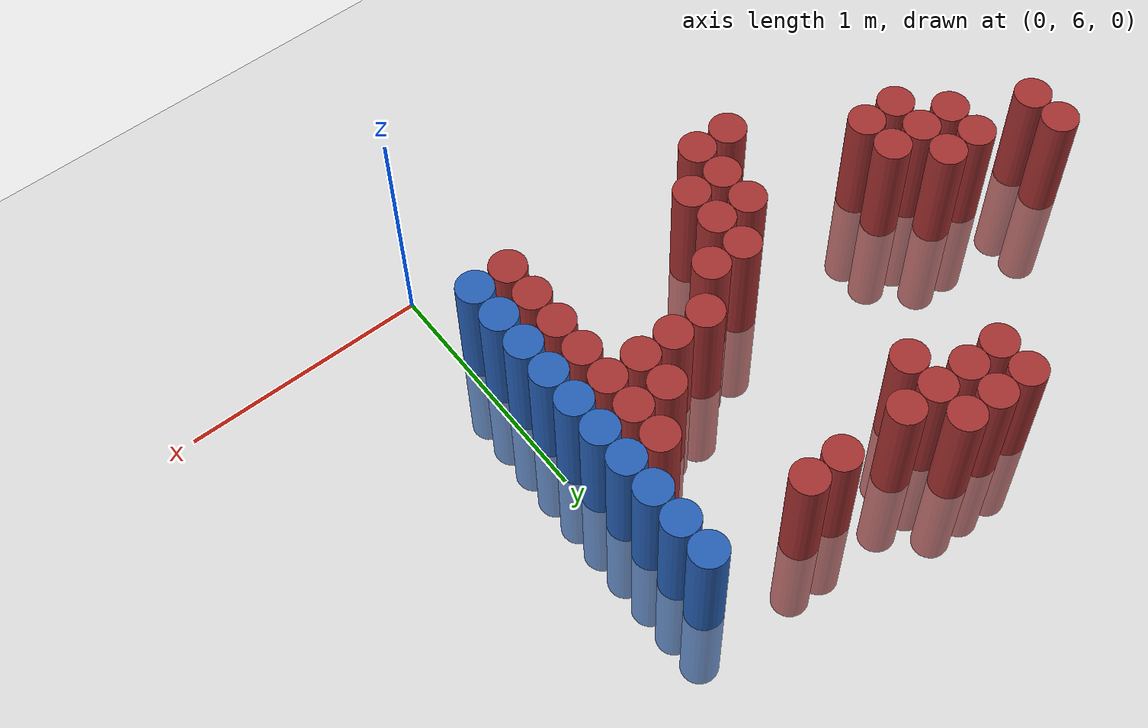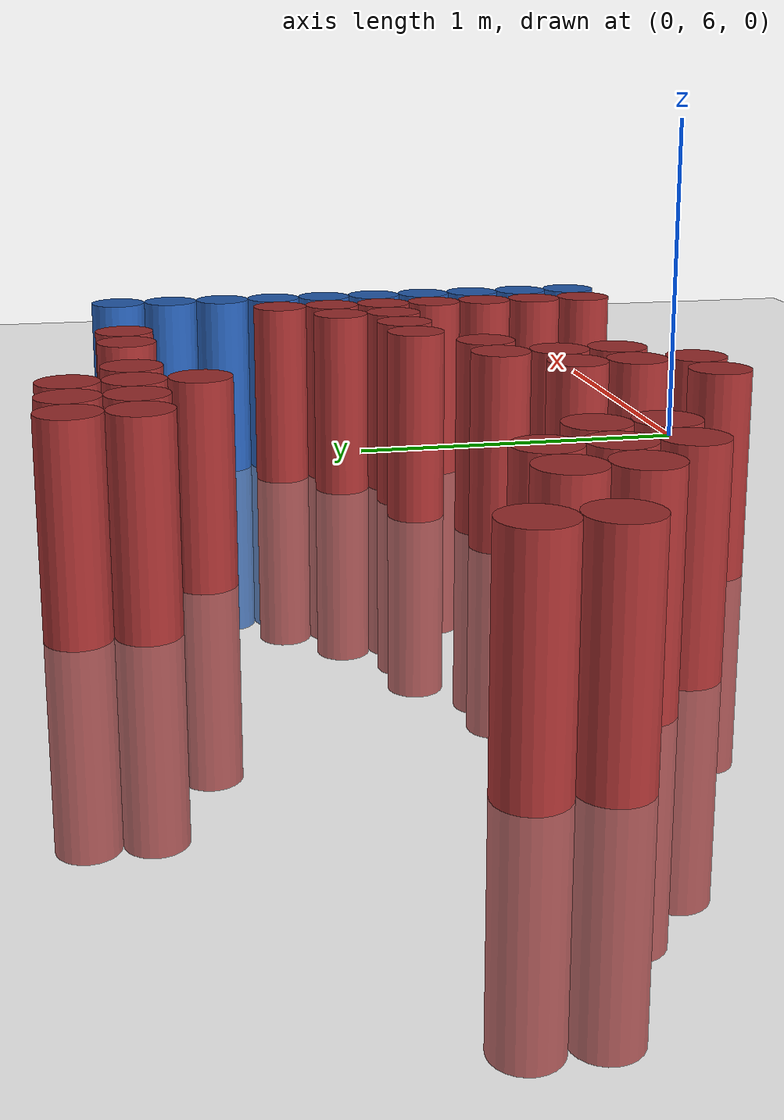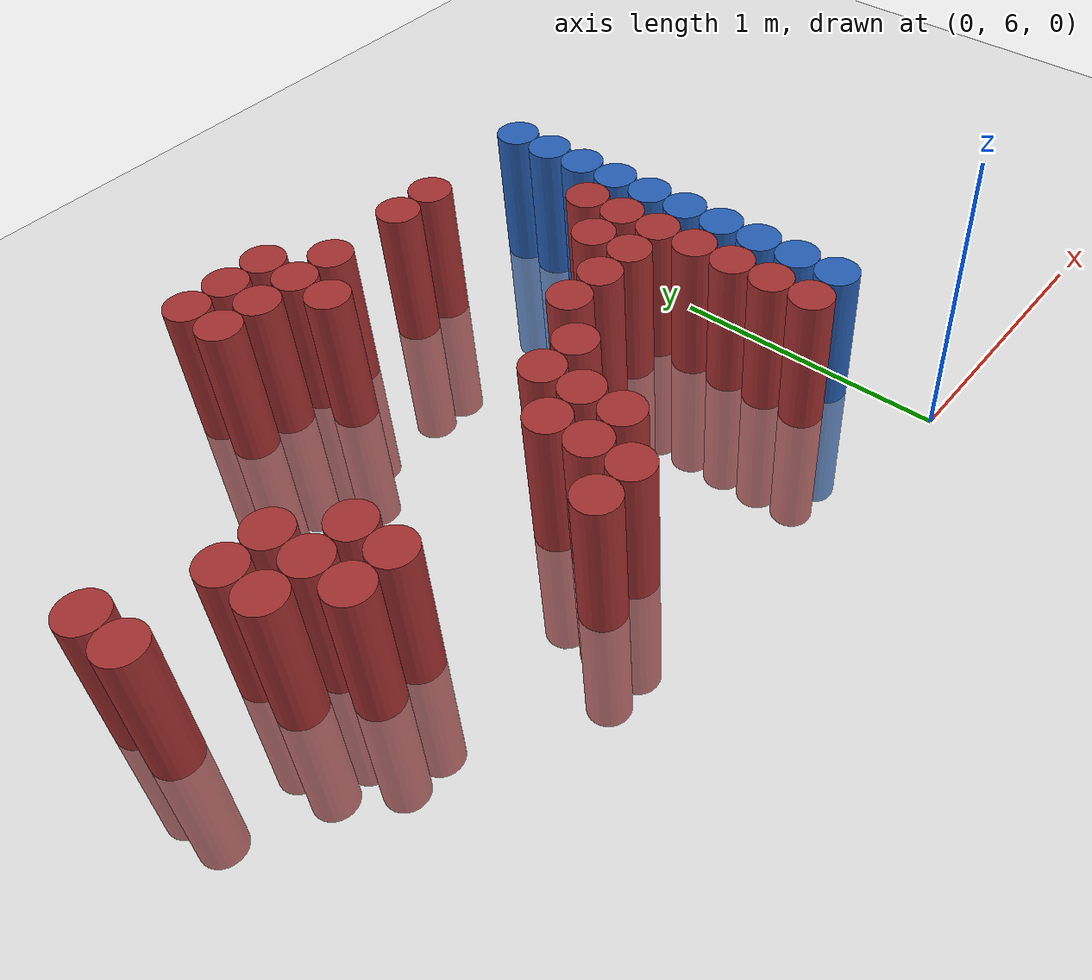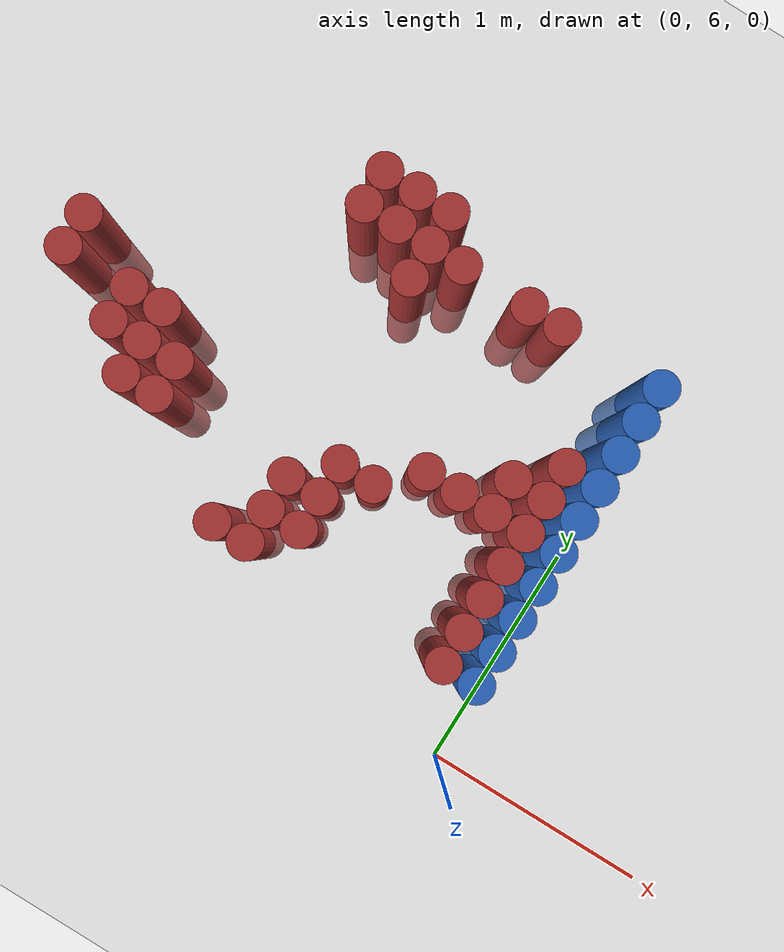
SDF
<sdf version="1.6">
 <world name="default">
  <model name="ground_plane">
   <static>1</static>
   <link name="link">
    <collision name="collision">
     <geometry><plane><normal>0 0 1</normal><size>100 100</size></plane></geometry>
     <surface><friction><ode><mu>100</mu><mu2>50</mu2></ode></friction></surface>
    </collision>
    <visual name="visual">
     <cast_shadows>0</cast_shadows>
     <geometry><plane><normal>0 0 1</normal><size>100 100</size></plane></geometry>
     <material>
      <script><uri>file://media/materials/scripts/gazebo.material</uri><name>Gazebo/Grey</name></script>
     </material>
    </visual>
   </link>
  </model>
  <model name="unit_cylinder_158">
   <static>1</static>
   <pose>-2.325000 6.975000 0.000000 0.000000 0.000000 0.000000</pose>
   <link name="link">
    <inertial>
     <mass>1</mass>
     <inertia><ixx>0.145833</ixx><ixy>0</ixy><ixz>0</ixz><iyy>0.145833</iyy><iyz>0</iyz><izz>0.125</izz></inertia>
    </inertial>
    <collision name="collision">
     <geometry><cylinder><radius>0.075000</radius><length>1</length></cylinder></geometry>
    </collision>
    <visual name="visual">
     <geometry><cylinder><radius>0.075000</radius><length>1</length></cylinder></geometry>
     <material>
      <ambient>0.648000 0.192000 0.192000 1</ambient>
      <diffuse>0.648000 0.192000 0.192000 1</diffuse>
     </material>
     <material>
      <script><name>Gazebo/Grey</name><uri>file://media/materials/scripts/gazebo.material</uri></script>
     </material>
    </visual>
   </link>
  </model>
  <model name="unit_cylinder_159">
   <static>1</static>
   <pose>-2.325000 7.125000 0.000000 0.000000 0.000000 0.000000</pose>
   <link name="link">
    <inertial>
     <mass>1</mass>
     <inertia><ixx>0.145833</ixx><ixy>0</ixy><ixz>0</ixz><iyy>0.145833</iyy><iyz>0</iyz><izz>0.125</izz></inertia>
    </inertial>
    <collision name="collision">
     <geometry><cylinder><radius>0.075000</radius><length>1</length></cylinder></geometry>
    </collision>
    <visual name="visual">
     <geometry><cylinder><radius>0.075000</radius><length>1</length></cylinder></geometry>
     <material>
      <ambient>0.648000 0.192000 0.192000 1</ambient>
      <diffuse>0.648000 0.192000 0.192000 1</diffuse>
     </material>
     <material>
      <script><name>Gazebo/Grey</name><uri>file://media/materials/scripts/gazebo.material</uri></script>
     </material>
    </visual>
   </link>
  </model>
  <model name="unit_cylinder_176">
   <static>1</static>
   <pose>-2.025000 6.825000 0.000000 0.000000 0.000000 0.000000</pose>
   <link name="link">
    <inertial>
     <mass>1</mass>
     <inertia><ixx>0.145833</ixx><ixy>0</ixy><ixz>0</ixz><iyy>0.145833</iyy><iyz>0</iyz><izz>0.125</izz></inertia>
    </inertial>
    <collision name="collision">
     <geometry><cylinder><radius>0.075000</radius><length>1</length></cylinder></geometry>
    </collision>
    <visual name="visual">
     <geometry><cylinder><radius>0.075000</radius><length>1</length></cylinder></geometry>
     <material>
      <ambient>0.648000 0.192000 0.192000 1</ambient>
      <diffuse>0.648000 0.192000 0.192000 1</diffuse>
     </material>
     <material>
      <script><name>Gazebo/Grey</name><uri>file://media/materials/scripts/gazebo.material</uri></script>
     </material>
    </visual>
   </link>
  </model>
  <model name="unit_cylinder_177">
   <static>1</static>
   <pose>-2.025000 6.975000 0.000000 0.000000 0.000000 0.000000</pose>
   <link name="link">
    <inertial>
     <mass>1</mass>
     <inertia><ixx>0.145833</ixx><ixy>0</ixy><ixz>0</ixz><iyy>0.145833</iyy><iyz>0</iyz><izz>0.125</izz></inertia>
    </inertial>
    <collision name="collision">
     <geometry><cylinder><radius>0.075000</radius><length>1</length></cylinder></geometry>
    </collision>
    <visual name="visual">
     <geometry><cylinder><radius>0.075000</radius><length>1</length></cylinder></geometry>
     <material>
      <ambient>0.648000 0.192000 0.192000 1</ambient>
      <diffuse>0.648000 0.192000 0.192000 1</diffuse>
     </material>
     <material>
      <script><name>Gazebo/Grey</name><uri>file://media/materials/scripts/gazebo.material</uri></script>
     </material>
    </visual>
   </link>
  </model>
  <model name="unit_cylinder_181">
   <static>1</static>
   <pose>-1.875000 6.675000 0.000000 0.000000 0.000000 0.000000</pose>
   <link name="link">
    <inertial>
     <mass>1</mass>
     <inertia><ixx>0.145833</ixx><ixy>0</ixy><ixz>0</ixz><iyy>0.145833</iyy><iyz>0</iyz><izz>0.125</izz></inertia>
    </inertial>
    <collision name="collision">
     <geometry><cylinder><radius>0.075000</radius><length>1</length></cylinder></geometry>
    </collision>
    <visual name="visual">
     <geometry><cylinder><radius>0.075000</radius><length>1</length></cylinder></geometry>
     <material>
      <ambient>0.648000 0.192000 0.192000 1</ambient>
      <diffuse>0.648000 0.192000 0.192000 1</diffuse>
     </material>
     <material>
      <script><name>Gazebo/Grey</name><uri>file://media/materials/scripts/gazebo.material</uri></script>
     </material>
    </visual>
   </link>
  </model>
  <model name="unit_cylinder_182">
   <static>1</static>
   <pose>-1.875000 6.825000 0.000000 0.000000 0.000000 0.000000</pose>
   <link name="link">
    <inertial>
     <mass>1</mass>
     <inertia><ixx>0.145833</ixx><ixy>0</ixy><ixz>0</ixz><iyy>0.145833</iyy><iyz>0</iyz><izz>0.125</izz></inertia>
    </inertial>
    <collision name="collision">
     <geometry><cylinder><radius>0.075000</radius><length>1</length></cylinder></geometry>
    </collision>
    <visual name="visual">
     <geometry><cylinder><radius>0.075000</radius><length>1</length></cylinder></geometry>
     <material>
      <ambient>0.648000 0.192000 0.192000 1</ambient>
      <diffuse>0.648000 0.192000 0.192000 1</diffuse>
     </material>
     <material>
      <script><name>Gazebo/Grey</name><uri>file://media/materials/scripts/gazebo.material</uri></script>
     </material>
    </visual>
   </link>
  </model>
  <model name="unit_cylinder_183">
   <static>1</static>
   <pose>-1.875000 6.975000 0.000000 0.000000 0.000000 0.000000</pose>
   <link name="link">
    <inertial>
     <mass>1</mass>
     <inertia><ixx>0.145833</ixx><ixy>0</ixy><ixz>0</ixz><iyy>0.145833</iyy><iyz>0</iyz><izz>0.125</izz></inertia>
    </inertial>
    <collision name="collision">
     <geometry><cylinder><radius>0.075000</radius><length>1</length></cylinder></geometry>
    </collision>
    <visual name="visual">
     <geometry><cylinder><radius>0.075000</radius><length>1</length></cylinder></geometry>
     <material>
      <ambient>0.648000 0.192000 0.192000 1</ambient>
      <diffuse>0.648000 0.192000 0.192000 1</diffuse>
     </material>
     <material>
      <script><name>Gazebo/Grey</name><uri>file://media/materials/scripts/gazebo.material</uri></script>
     </material>
    </visual>
   </link>
  </model>
  <model name="unit_cylinder_189">
   <static>1</static>
   <pose>-1.725000 6.675000 0.000000 0.000000 0.000000 0.000000</pose>
   <link name="link">
    <inertial>
     <mass>1</mass>
     <inertia><ixx>0.145833</ixx><ixy>0</ixy><ixz>0</ixz><iyy>0.145833</iyy><iyz>0</iyz><izz>0.125</izz></inertia>
    </inertial>
    <collision name="collision">
     <geometry><cylinder><radius>0.075000</radius><length>1</length></cylinder></geometry>
    </collision>
    <visual name="visual">
     <geometry><cylinder><radius>0.075000</radius><length>1</length></cylinder></geometry>
     <material>
      <ambient>0.648000 0.192000 0.192000 1</ambient>
      <diffuse>0.648000 0.192000 0.192000 1</diffuse>
     </material>
     <material>
      <script><name>Gazebo/Grey</name><uri>file://media/materials/scripts/gazebo.material</uri></script>
     </material>
    </visual>
   </link>
  </model>
  <model name="unit_cylinder_190">
   <static>1</static>
   <pose>-1.725000 6.825000 0.000000 0.000000 0.000000 0.000000</pose>
   <link name="link">
    <inertial>
     <mass>1</mass>
     <inertia><ixx>0.145833</ixx><ixy>0</ixy><ixz>0</ixz><iyy>0.145833</iyy><iyz>0</iyz><izz>0.125</izz></inertia>
    </inertial>
    <collision name="collision">
     <geometry><cylinder><radius>0.075000</radius><length>1</length></cylinder></geometry>
    </collision>
    <visual name="visual">
     <geometry><cylinder><radius>0.075000</radius><length>1</length></cylinder></geometry>
     <material>
      <ambient>0.648000 0.192000 0.192000 1</ambient>
      <diffuse>0.648000 0.192000 0.192000 1</diffuse>
     </material>
     <material>
      <script><name>Gazebo/Grey</name><uri>file://media/materials/scripts/gazebo.material</uri></script>
     </material>
    </visual>
   </link>
  </model>
  <model name="unit_cylinder_193">
   <static>1</static>
   <pose>-1.425000 7.725000 0.000000 0.000000 0.000000 0.000000</pose>
   <link name="link">
    <inertial>
     <mass>1</mass>
     <inertia><ixx>0.145833</ixx><ixy>0</ixy><ixz>0</ixz><iyy>0.145833</iyy><iyz>0</iyz><izz>0.125</izz></inertia>
    </inertial>
    <collision name="collision">
     <geometry><cylinder><radius>0.075000</radius><length>1</length></cylinder></geometry>
    </collision>
    <visual name="visual">
     <geometry><cylinder><radius>0.075000</radius><length>1</length></cylinder></geometry>
     <material>
      <ambient>0.648000 0.192000 0.192000 1</ambient>
      <diffuse>0.648000 0.192000 0.192000 1</diffuse>
     </material>
     <material>
      <script><name>Gazebo/Grey</name><uri>file://media/materials/scripts/gazebo.material</uri></script>
     </material>
    </visual>
   </link>
  </model>
  <model name="unit_cylinder_194">
   <static>1</static>
   <pose>-1.425000 7.875000 0.000000 0.000000 0.000000 0.000000</pose>
   <link name="link">
    <inertial>
     <mass>1</mass>
     <inertia><ixx>0.145833</ixx><ixy>0</ixy><ixz>0</ixz><iyy>0.145833</iyy><iyz>0</iyz><izz>0.125</izz></inertia>
    </inertial>
    <collision name="collision">
     <geometry><cylinder><radius>0.075000</radius><length>1</length></cylinder></geometry>
    </collision>
    <visual name="visual">
     <geometry><cylinder><radius>0.075000</radius><length>1</length></cylinder></geometry>
     <material>
      <ambient>0.648000 0.192000 0.192000 1</ambient>
      <diffuse>0.648000 0.192000 0.192000 1</diffuse>
     </material>
     <material>
      <script><name>Gazebo/Grey</name><uri>file://media/materials/scripts/gazebo.material</uri></script>
     </material>
    </visual>
   </link>
  </model>
  <model name="unit_cylinder_197">
   <static>1</static>
   <pose>-1.275000 6.375000 0.000000 0.000000 0.000000 0.000000</pose>
   <link name="link">
    <inertial>
     <mass>1</mass>
     <inertia><ixx>0.145833</ixx><ixy>0</ixy><ixz>0</ixz><iyy>0.145833</iyy><iyz>0</iyz><izz>0.125</izz></inertia>
    </inertial>
    <collision name="collision">
     <geometry><cylinder><radius>0.075000</radius><length>1</length></cylinder></geometry>
    </collision>
    <visual name="visual">
     <geometry><cylinder><radius>0.075000</radius><length>1</length></cylinder></geometry>
     <material>
      <ambient>0.648000 0.192000 0.192000 1</ambient>
      <diffuse>0.648000 0.192000 0.192000 1</diffuse>
     </material>
     <material>
      <script><name>Gazebo/Grey</name><uri>file://media/materials/scripts/gazebo.material</uri></script>
     </material>
    </visual>
   </link>
  </model>
  <model name="unit_cylinder_198">
   <static>1</static>
   <pose>-1.275000 7.725000 0.000000 0.000000 0.000000 0.000000</pose>
   <link name="link">
    <inertial>
     <mass>1</mass>
     <inertia><ixx>0.145833</ixx><ixy>0</ixy><ixz>0</ixz><iyy>0.145833</iyy><iyz>0</iyz><izz>0.125</izz></inertia>
    </inertial>
    <collision name="collision">
     <geometry><cylinder><radius>0.075000</radius><length>1</length></cylinder></geometry>
    </collision>
    <visual name="visual">
     <geometry><cylinder><radius>0.075000</radius><length>1</length></cylinder></geometry>
     <material>
      <ambient>0.648000 0.192000 0.192000 1</ambient>
      <diffuse>0.648000 0.192000 0.192000 1</diffuse>
     </material>
     <material>
      <script><name>Gazebo/Grey</name><uri>file://media/materials/scripts/gazebo.material</uri></script>
     </material>
    </visual>
   </link>
  </model>
  <model name="unit_cylinder_199">
   <static>1</static>
   <pose>-1.275000 7.875000 0.000000 0.000000 0.000000 0.000000</pose>
   <link name="link">
    <inertial>
     <mass>1</mass>
     <inertia><ixx>0.145833</ixx><ixy>0</ixy><ixz>0</ixz><iyy>0.145833</iyy><iyz>0</iyz><izz>0.125</izz></inertia>
    </inertial>
    <collision name="collision">
     <geometry><cylinder><radius>0.075000</radius><length>1</length></cylinder></geometry>
    </collision>
    <visual name="visual">
     <geometry><cylinder><radius>0.075000</radius><length>1</length></cylinder></geometry>
     <material>
      <ambient>0.648000 0.192000 0.192000 1</ambient>
      <diffuse>0.648000 0.192000 0.192000 1</diffuse>
     </material>
     <material>
      <script><name>Gazebo/Grey</name><uri>file://media/materials/scripts/gazebo.material</uri></script>
     </material>
    </visual>
   </link>
  </model>
  <model name="unit_cylinder_203">
   <static>1</static>
   <pose>-1.125000 6.375000 0.000000 0.000000 0.000000 0.000000</pose>
   <link name="link">
    <inertial>
     <mass>1</mass>
     <inertia><ixx>0.145833</ixx><ixy>0</ixy><ixz>0</ixz><iyy>0.145833</iyy><iyz>0</iyz><izz>0.125</izz></inertia>
    </inertial>
    <collision name="collision">
     <geometry><cylinder><radius>0.075000</radius><length>1</length></cylinder></geometry>
    </collision>
    <visual name="visual">
     <geometry><cylinder><radius>0.075000</radius><length>1</length></cylinder></geometry>
     <material>
      <ambient>0.648000 0.192000 0.192000 1</ambient>
      <diffuse>0.648000 0.192000 0.192000 1</diffuse>
     </material>
     <material>
      <script><name>Gazebo/Grey</name><uri>file://media/materials/scripts/gazebo.material</uri></script>
     </material>
    </visual>
   </link>
  </model>
  <model name="unit_cylinder_204">
   <static>1</static>
   <pose>-1.125000 6.525000 0.000000 0.000000 0.000000 0.000000</pose>
   <link name="link">
    <inertial>
     <mass>1</mass>
     <inertia><ixx>0.145833</ixx><ixy>0</ixy><ixz>0</ixz><iyy>0.145833</iyy><iyz>0</iyz><izz>0.125</izz></inertia>
    </inertial>
    <collision name="collision">
     <geometry><cylinder><radius>0.075000</radius><length>1</length></cylinder></geometry>
    </collision>
    <visual name="visual">
     <geometry><cylinder><radius>0.075000</radius><length>1</length></cylinder></geometry>
     <material>
      <ambient>0.648000 0.192000 0.192000 1</ambient>
      <diffuse>0.648000 0.192000 0.192000 1</diffuse>
     </material>
     <material>
      <script><name>Gazebo/Grey</name><uri>file://media/materials/scripts/gazebo.material</uri></script>
     </material>
    </visual>
   </link>
  </model>
  <model name="unit_cylinder_205">
   <static>1</static>
   <pose>-1.125000 6.675000 0.000000 0.000000 0.000000 0.000000</pose>
   <link name="link">
    <inertial>
     <mass>1</mass>
     <inertia><ixx>0.145833</ixx><ixy>0</ixy><ixz>0</ixz><iyy>0.145833</iyy><iyz>0</iyz><izz>0.125</izz></inertia>
    </inertial>
    <collision name="collision">
     <geometry><cylinder><radius>0.075000</radius><length>1</length></cylinder></geometry>
    </collision>
    <visual name="visual">
     <geometry><cylinder><radius>0.075000</radius><length>1</length></cylinder></geometry>
     <material>
      <ambient>0.648000 0.192000 0.192000 1</ambient>
      <diffuse>0.648000 0.192000 0.192000 1</diffuse>
     </material>
     <material>
      <script><name>Gazebo/Grey</name><uri>file://media/materials/scripts/gazebo.material</uri></script>
     </material>
    </visual>
   </link>
  </model>
  <model name="unit_cylinder_206">
   <static>1</static>
   <pose>-1.125000 7.575000 0.000000 0.000000 0.000000 0.000000</pose>
   <link name="link">
    <inertial>
     <mass>1</mass>
     <inertia><ixx>0.145833</ixx><ixy>0</ixy><ixz>0</ixz><iyy>0.145833</iyy><iyz>0</iyz><izz>0.125</izz></inertia>
    </inertial>
    <collision name="collision">
     <geometry><cylinder><radius>0.075000</radius><length>1</length></cylinder></geometry>
    </collision>
    <visual name="visual">
     <geometry><cylinder><radius>0.075000</radius><length>1</length></cylinder></geometry>
     <material>
      <ambient>0.648000 0.192000 0.192000 1</ambient>
      <diffuse>0.648000 0.192000 0.192000 1</diffuse>
     </material>
     <material>
      <script><name>Gazebo/Grey</name><uri>file://media/materials/scripts/gazebo.material</uri></script>
     </material>
    </visual>
   </link>
  </model>
  <model name="unit_cylinder_207">
   <static>1</static>
   <pose>-1.125000 7.725000 0.000000 0.000000 0.000000 0.000000</pose>
   <link name="link">
    <inertial>
     <mass>1</mass>
     <inertia><ixx>0.145833</ixx><ixy>0</ixy><ixz>0</ixz><iyy>0.145833</iyy><iyz>0</iyz><izz>0.125</izz></inertia>
    </inertial>
    <collision name="collision">
     <geometry><cylinder><radius>0.075000</radius><length>1</length></cylinder></geometry>
    </collision>
    <visual name="visual">
     <geometry><cylinder><radius>0.075000</radius><length>1</length></cylinder></geometry>
     <material>
      <ambient>0.648000 0.192000 0.192000 1</ambient>
      <diffuse>0.648000 0.192000 0.192000 1</diffuse>
     </material>
     <material>
      <script><name>Gazebo/Grey</name><uri>file://media/materials/scripts/gazebo.material</uri></script>
     </material>
    </visual>
   </link>
  </model>
  <model name="unit_cylinder_208">
   <static>1</static>
   <pose>-1.125000 7.875000 0.000000 0.000000 0.000000 0.000000</pose>
   <link name="link">
    <inertial>
     <mass>1</mass>
     <inertia><ixx>0.145833</ixx><ixy>0</ixy><ixz>0</ixz><iyy>0.145833</iyy><iyz>0</iyz><izz>0.125</izz></inertia>
    </inertial>
    <collision name="collision">
     <geometry><cylinder><radius>0.075000</radius><length>1</length></cylinder></geometry>
    </collision>
    <visual name="visual">
     <geometry><cylinder><radius>0.075000</radius><length>1</length></cylinder></geometry>
     <material>
      <ambient>0.648000 0.192000 0.192000 1</ambient>
      <diffuse>0.648000 0.192000 0.192000 1</diffuse>
     </material>
     <material>
      <script><name>Gazebo/Grey</name><uri>file://media/materials/scripts/gazebo.material</uri></script>
     </material>
    </visual>
   </link>
  </model>
  <model name="unit_cylinder_211">
   <static>1</static>
   <pose>-0.975000 6.525000 0.000000 0.000000 0.000000 0.000000</pose>
   <link name="link">
    <inertial>
     <mass>1</mass>
     <inertia><ixx>0.145833</ixx><ixy>0</ixy><ixz>0</ixz><iyy>0.145833</iyy><iyz>0</iyz><izz>0.125</izz></inertia>
    </inertial>
    <collision name="collision">
     <geometry><cylinder><radius>0.075000</radius><length>1</length></cylinder></geometry>
    </collision>
    <visual name="visual">
     <geometry><cylinder><radius>0.075000</radius><length>1</length></cylinder></geometry>
     <material>
      <ambient>0.648000 0.192000 0.192000 1</ambient>
      <diffuse>0.648000 0.192000 0.192000 1</diffuse>
     </material>
     <material>
      <script><name>Gazebo/Grey</name><uri>file://media/materials/scripts/gazebo.material</uri></script>
     </material>
    </visual>
   </link>
  </model>
  <model name="unit_cylinder_212">
   <static>1</static>
   <pose>-0.975000 6.675000 0.000000 0.000000 0.000000 0.000000</pose>
   <link name="link">
    <inertial>
     <mass>1</mass>
     <inertia><ixx>0.145833</ixx><ixy>0</ixy><ixz>0</ixz><iyy>0.145833</iyy><iyz>0</iyz><izz>0.125</izz></inertia>
    </inertial>
    <collision name="collision">
     <geometry><cylinder><radius>0.075000</radius><length>1</length></cylinder></geometry>
    </collision>
    <visual name="visual">
     <geometry><cylinder><radius>0.075000</radius><length>1</length></cylinder></geometry>
     <material>
      <ambient>0.648000 0.192000 0.192000 1</ambient>
      <diffuse>0.648000 0.192000 0.192000 1</diffuse>
     </material>
     <material>
      <script><name>Gazebo/Grey</name><uri>file://media/materials/scripts/gazebo.material</uri></script>
     </material>
    </visual>
   </link>
  </model>
  <model name="unit_cylinder_213">
   <static>1</static>
   <pose>-0.975000 6.825000 0.000000 0.000000 0.000000 0.000000</pose>
   <link name="link">
    <inertial>
     <mass>1</mass>
     <inertia><ixx>0.145833</ixx><ixy>0</ixy><ixz>0</ixz><iyy>0.145833</iyy><iyz>0</iyz><izz>0.125</izz></inertia>
    </inertial>
    <collision name="collision">
     <geometry><cylinder><radius>0.075000</radius><length>1</length></cylinder></geometry>
    </collision>
    <visual name="visual">
     <geometry><cylinder><radius>0.075000</radius><length>1</length></cylinder></geometry>
     <material>
      <ambient>0.648000 0.192000 0.192000 1</ambient>
      <diffuse>0.648000 0.192000 0.192000 1</diffuse>
     </material>
     <material>
      <script><name>Gazebo/Grey</name><uri>file://media/materials/scripts/gazebo.material</uri></script>
     </material>
    </visual>
   </link>
  </model>
  <model name="unit_cylinder_214">
   <static>1</static>
   <pose>-0.975000 7.725000 0.000000 0.000000 0.000000 0.000000</pose>
   <link name="link">
    <inertial>
     <mass>1</mass>
     <inertia><ixx>0.145833</ixx><ixy>0</ixy><ixz>0</ixz><iyy>0.145833</iyy><iyz>0</iyz><izz>0.125</izz></inertia>
    </inertial>
    <collision name="collision">
     <geometry><cylinder><radius>0.075000</radius><length>1</length></cylinder></geometry>
    </collision>
    <visual name="visual">
     <geometry><cylinder><radius>0.075000</radius><length>1</length></cylinder></geometry>
     <material>
      <ambient>0.648000 0.192000 0.192000 1</ambient>
      <diffuse>0.648000 0.192000 0.192000 1</diffuse>
     </material>
     <material>
      <script><name>Gazebo/Grey</name><uri>file://media/materials/scripts/gazebo.material</uri></script>
     </material>
    </visual>
   </link>
  </model>
  <model name="unit_cylinder_217">
   <static>1</static>
   <pose>-0.825000 6.825000 0.000000 0.000000 0.000000 0.000000</pose>
   <link name="link">
    <inertial>
     <mass>1</mass>
     <inertia><ixx>0.145833</ixx><ixy>0</ixy><ixz>0</ixz><iyy>0.145833</iyy><iyz>0</iyz><izz>0.125</izz></inertia>
    </inertial>
    <collision name="collision">
     <geometry><cylinder><radius>0.075000</radius><length>1</length></cylinder></geometry>
    </collision>
    <visual name="visual">
     <geometry><cylinder><radius>0.075000</radius><length>1</length></cylinder></geometry>
     <material>
      <ambient>0.648000 0.192000 0.192000 1</ambient>
      <diffuse>0.648000 0.192000 0.192000 1</diffuse>
     </material>
     <material>
      <script><name>Gazebo/Grey</name><uri>file://media/materials/scripts/gazebo.material</uri></script>
     </material>
    </visual>
   </link>
  </model>
  <model name="unit_cylinder_224">
   <static>1</static>
   <pose>-0.675000 6.975000 0.000000 0.000000 0.000000 0.000000</pose>
   <link name="link">
    <inertial>
     <mass>1</mass>
     <inertia><ixx>0.145833</ixx><ixy>0</ixy><ixz>0</ixz><iyy>0.145833</iyy><iyz>0</iyz><izz>0.125</izz></inertia>
    </inertial>
    <collision name="collision">
     <geometry><cylinder><radius>0.075000</radius><length>1</length></cylinder></geometry>
    </collision>
    <visual name="visual">
     <geometry><cylinder><radius>0.075000</radius><length>1</length></cylinder></geometry>
     <material>
      <ambient>0.648000 0.192000 0.192000 1</ambient>
      <diffuse>0.648000 0.192000 0.192000 1</diffuse>
     </material>
     <material>
      <script><name>Gazebo/Grey</name><uri>file://media/materials/scripts/gazebo.material</uri></script>
     </material>
    </visual>
   </link>
  </model>
  <model name="unit_cylinder_225">
   <static>1</static>
   <pose>-0.675000 7.725000 0.000000 0.000000 0.000000 0.000000</pose>
   <link name="link">
    <inertial>
     <mass>1</mass>
     <inertia><ixx>0.145833</ixx><ixy>0</ixy><ixz>0</ixz><iyy>0.145833</iyy><iyz>0</iyz><izz>0.125</izz></inertia>
    </inertial>
    <collision name="collision">
     <geometry><cylinder><radius>0.075000</radius><length>1</length></cylinder></geometry>
    </collision>
    <visual name="visual">
     <geometry><cylinder><radius>0.075000</radius><length>1</length></cylinder></geometry>
     <material>
      <ambient>0.648000 0.192000 0.192000 1</ambient>
      <diffuse>0.648000 0.192000 0.192000 1</diffuse>
     </material>
     <material>
      <script><name>Gazebo/Grey</name><uri>file://media/materials/scripts/gazebo.material</uri></script>
     </material>
    </visual>
   </link>
  </model>
  <model name="unit_cylinder_233">
   <static>1</static>
   <pose>-0.525000 6.975000 0.000000 0.000000 0.000000 0.000000</pose>
   <link name="link">
    <inertial>
     <mass>1</mass>
     <inertia><ixx>0.145833</ixx><ixy>0</ixy><ixz>0</ixz><iyy>0.145833</iyy><iyz>0</iyz><izz>0.125</izz></inertia>
    </inertial>
    <collision name="collision">
     <geometry><cylinder><radius>0.075000</radius><length>1</length></cylinder></geometry>
    </collision>
    <visual name="visual">
     <geometry><cylinder><radius>0.075000</radius><length>1</length></cylinder></geometry>
     <material>
      <ambient>0.648000 0.192000 0.192000 1</ambient>
      <diffuse>0.648000 0.192000 0.192000 1</diffuse>
     </material>
     <material>
      <script><name>Gazebo/Grey</name><uri>file://media/materials/scripts/gazebo.material</uri></script>
     </material>
    </visual>
   </link>
  </model>
  <model name="unit_cylinder_234">
   <static>1</static>
   <pose>-0.525000 7.725000 0.000000 0.000000 0.000000 0.000000</pose>
   <link name="link">
    <inertial>
     <mass>1</mass>
     <inertia><ixx>0.145833</ixx><ixy>0</ixy><ixz>0</ixz><iyy>0.145833</iyy><iyz>0</iyz><izz>0.125</izz></inertia>
    </inertial>
    <collision name="collision">
     <geometry><cylinder><radius>0.075000</radius><length>1</length></cylinder></geometry>
    </collision>
    <visual name="visual">
     <geometry><cylinder><radius>0.075000</radius><length>1</length></cylinder></geometry>
     <material>
      <ambient>0.648000 0.192000 0.192000 1</ambient>
      <diffuse>0.648000 0.192000 0.192000 1</diffuse>
     </material>
     <material>
      <script><name>Gazebo/Grey</name><uri>file://media/materials/scripts/gazebo.material</uri></script>
     </material>
    </visual>
   </link>
  </model>
  <model name="unit_cylinder_245">
   <static>1</static>
   <pose>-0.375000 6.975000 0.000000 0.000000 0.000000 0.000000</pose>
   <link name="link">
    <inertial>
     <mass>1</mass>
     <inertia><ixx>0.145833</ixx><ixy>0</ixy><ixz>0</ixz><iyy>0.145833</iyy><iyz>0</iyz><izz>0.125</izz></inertia>
    </inertial>
    <collision name="collision">
     <geometry><cylinder><radius>0.075000</radius><length>1</length></cylinder></geometry>
    </collision>
    <visual name="visual">
     <geometry><cylinder><radius>0.075000</radius><length>1</length></cylinder></geometry>
     <material>
      <ambient>0.648000 0.192000 0.192000 1</ambient>
      <diffuse>0.648000 0.192000 0.192000 1</diffuse>
     </material>
     <material>
      <script><name>Gazebo/Grey</name><uri>file://media/materials/scripts/gazebo.material</uri></script>
     </material>
    </visual>
   </link>
  </model>
  <model name="unit_cylinder_246">
   <static>1</static>
   <pose>-0.375000 7.125000 0.000000 0.000000 0.000000 0.000000</pose>
   <link name="link">
    <inertial>
     <mass>1</mass>
     <inertia><ixx>0.145833</ixx><ixy>0</ixy><ixz>0</ixz><iyy>0.145833</iyy><iyz>0</iyz><izz>0.125</izz></inertia>
    </inertial>
    <collision name="collision">
     <geometry><cylinder><radius>0.075000</radius><length>1</length></cylinder></geometry>
    </collision>
    <visual name="visual">
     <geometry><cylinder><radius>0.075000</radius><length>1</length></cylinder></geometry>
     <material>
      <ambient>0.648000 0.192000 0.192000 1</ambient>
      <diffuse>0.648000 0.192000 0.192000 1</diffuse>
     </material>
     <material>
      <script><name>Gazebo/Grey</name><uri>file://media/materials/scripts/gazebo.material</uri></script>
     </material>
    </visual>
   </link>
  </model>
  <model name="unit_cylinder_250">
   <static>1</static>
   <pose>-0.225000 6.375000 0.000000 0.000000 0.000000 0.000000</pose>
   <link name="link">
    <inertial>
     <mass>1</mass>
     <inertia><ixx>0.145833</ixx><ixy>0</ixy><ixz>0</ixz><iyy>0.145833</iyy><iyz>0</iyz><izz>0.125</izz></inertia>
    </inertial>
    <collision name="collision">
     <geometry><cylinder><radius>0.075000</radius><length>1</length></cylinder></geometry>
    </collision>
    <visual name="visual">
     <geometry><cylinder><radius>0.075000</radius><length>1</length></cylinder></geometry>
     <material>
      <ambient>0.648000 0.192000 0.192000 1</ambient>
      <diffuse>0.648000 0.192000 0.192000 1</diffuse>
     </material>
     <material>
      <script><name>Gazebo/Grey</name><uri>file://media/materials/scripts/gazebo.material</uri></script>
     </material>
    </visual>
   </link>
  </model>
  <model name="unit_cylinder_251">
   <static>1</static>
   <pose>-0.225000 6.525000 0.000000 0.000000 0.000000 0.000000</pose>
   <link name="link">
    <inertial>
     <mass>1</mass>
     <inertia><ixx>0.145833</ixx><ixy>0</ixy><ixz>0</ixz><iyy>0.145833</iyy><iyz>0</iyz><izz>0.125</izz></inertia>
    </inertial>
    <collision name="collision">
     <geometry><cylinder><radius>0.075000</radius><length>1</length></cylinder></geometry>
    </collision>
    <visual name="visual">
     <geometry><cylinder><radius>0.075000</radius><length>1</length></cylinder></geometry>
     <material>
      <ambient>0.648000 0.192000 0.192000 1</ambient>
      <diffuse>0.648000 0.192000 0.192000 1</diffuse>
     </material>
     <material>
      <script><name>Gazebo/Grey</name><uri>file://media/materials/scripts/gazebo.material</uri></script>
     </material>
    </visual>
   </link>
  </model>
  <model name="unit_cylinder_252">
   <static>1</static>
   <pose>-0.225000 6.675000 0.000000 0.000000 0.000000 0.000000</pose>
   <link name="link">
    <inertial>
     <mass>1</mass>
     <inertia><ixx>0.145833</ixx><ixy>0</ixy><ixz>0</ixz><iyy>0.145833</iyy><iyz>0</iyz><izz>0.125</izz></inertia>
    </inertial>
    <collision name="collision">
     <geometry><cylinder><radius>0.075000</radius><length>1</length></cylinder></geometry>
    </collision>
    <visual name="visual">
     <geometry><cylinder><radius>0.075000</radius><length>1</length></cylinder></geometry>
     <material>
      <ambient>0.648000 0.192000 0.192000 1</ambient>
      <diffuse>0.648000 0.192000 0.192000 1</diffuse>
     </material>
     <material>
      <script><name>Gazebo/Grey</name><uri>file://media/materials/scripts/gazebo.material</uri></script>
     </material>
    </visual>
   </link>
  </model>
  <model name="unit_cylinder_253">
   <static>1</static>
   <pose>-0.225000 6.825000 0.000000 0.000000 0.000000 0.000000</pose>
   <link name="link">
    <inertial>
     <mass>1</mass>
     <inertia><ixx>0.145833</ixx><ixy>0</ixy><ixz>0</ixz><iyy>0.145833</iyy><iyz>0</iyz><izz>0.125</izz></inertia>
    </inertial>
    <collision name="collision">
     <geometry><cylinder><radius>0.075000</radius><length>1</length></cylinder></geometry>
    </collision>
    <visual name="visual">
     <geometry><cylinder><radius>0.075000</radius><length>1</length></cylinder></geometry>
     <material>
      <ambient>0.648000 0.192000 0.192000 1</ambient>
      <diffuse>0.648000 0.192000 0.192000 1</diffuse>
     </material>
     <material>
      <script><name>Gazebo/Grey</name><uri>file://media/materials/scripts/gazebo.material</uri></script>
     </material>
    </visual>
   </link>
  </model>
  <model name="unit_cylinder_254">
   <static>1</static>
   <pose>-0.225000 6.975000 0.000000 0.000000 0.000000 0.000000</pose>
   <link name="link">
    <inertial>
     <mass>1</mass>
     <inertia><ixx>0.145833</ixx><ixy>0</ixy><ixz>0</ixz><iyy>0.145833</iyy><iyz>0</iyz><izz>0.125</izz></inertia>
    </inertial>
    <collision name="collision">
     <geometry><cylinder><radius>0.075000</radius><length>1</length></cylinder></geometry>
    </collision>
    <visual name="visual">
     <geometry><cylinder><radius>0.075000</radius><length>1</length></cylinder></geometry>
     <material>
      <ambient>0.648000 0.192000 0.192000 1</ambient>
      <diffuse>0.648000 0.192000 0.192000 1</diffuse>
     </material>
     <material>
      <script><name>Gazebo/Grey</name><uri>file://media/materials/scripts/gazebo.material</uri></script>
     </material>
    </visual>
   </link>
  </model>
  <model name="unit_cylinder_255">
   <static>1</static>
   <pose>-0.225000 7.125000 0.000000 0.000000 0.000000 0.000000</pose>
   <link name="link">
    <inertial>
     <mass>1</mass>
     <inertia><ixx>0.145833</ixx><ixy>0</ixy><ixz>0</ixz><iyy>0.145833</iyy><iyz>0</iyz><izz>0.125</izz></inertia>
    </inertial>
    <collision name="collision">
     <geometry><cylinder><radius>0.075000</radius><length>1</length></cylinder></geometry>
    </collision>
    <visual name="visual">
     <geometry><cylinder><radius>0.075000</radius><length>1</length></cylinder></geometry>
     <material>
      <ambient>0.648000 0.192000 0.192000 1</ambient>
      <diffuse>0.648000 0.192000 0.192000 1</diffuse>
     </material>
     <material>
      <script><name>Gazebo/Grey</name><uri>file://media/materials/scripts/gazebo.material</uri></script>
     </material>
    </visual>
   </link>
  </model>
  <model name="unit_cylinder_256">
   <static>1</static>
   <pose>-0.225000 7.275000 0.000000 0.000000 0.000000 0.000000</pose>
   <link name="link">
    <inertial>
     <mass>1</mass>
     <inertia><ixx>0.145833</ixx><ixy>0</ixy><ixz>0</ixz><iyy>0.145833</iyy><iyz>0</iyz><izz>0.125</izz></inertia>
    </inertial>
    <collision name="collision">
     <geometry><cylinder><radius>0.075000</radius><length>1</length></cylinder></geometry>
    </collision>
    <visual name="visual">
     <geometry><cylinder><radius>0.075000</radius><length>1</length></cylinder></geometry>
     <material>
      <ambient>0.648000 0.192000 0.192000 1</ambient>
      <diffuse>0.648000 0.192000 0.192000 1</diffuse>
     </material>
     <material>
      <script><name>Gazebo/Grey</name><uri>file://media/materials/scripts/gazebo.material</uri></script>
     </material>
    </visual>
   </link>
  </model>
  <model name="unit_cylinder_269">
   <static>1</static>
   <pose>-0.075000 6.375000 0.000000 0.000000 0.000000 0.000000</pose>
   <link name="link">
    <inertial>
     <mass>1</mass>
     <inertia><ixx>0.145833</ixx><ixy>0</ixy><ixz>0</ixz><iyy>0.145833</iyy><iyz>0</iyz><izz>0.125</izz></inertia>
    </inertial>
    <collision name="collision">
     <geometry><cylinder><radius>0.075000</radius><length>1</length></cylinder></geometry>
    </collision>
    <visual name="visual">
     <geometry><cylinder><radius>0.075000</radius><length>1</length></cylinder></geometry>
     <material>
      <ambient>0.152000 0.379000 0.720000 1</ambient>
      <diffuse>0.152000 0.379000 0.720000 1</diffuse>
     </material>
     <material>
      <script><name>Gazebo/Grey</name><uri>file://media/materials/scripts/gazebo.material</uri></script>
     </material>
    </visual>
   </link>
  </model>
  <model name="unit_cylinder_270">
   <static>1</static>
   <pose>-0.075000 6.525000 0.000000 0.000000 0.000000 0.000000</pose>
   <link name="link">
    <inertial>
     <mass>1</mass>
     <inertia><ixx>0.145833</ixx><ixy>0</ixy><ixz>0</ixz><iyy>0.145833</iyy><iyz>0</iyz><izz>0.125</izz></inertia>
    </inertial>
    <collision name="collision">
     <geometry><cylinder><radius>0.075000</radius><length>1</length></cylinder></geometry>
    </collision>
    <visual name="visual">
     <geometry><cylinder><radius>0.075000</radius><length>1</length></cylinder></geometry>
     <material>
      <ambient>0.152000 0.379000 0.720000 1</ambient>
      <diffuse>0.152000 0.379000 0.720000 1</diffuse>
     </material>
     <material>
      <script><name>Gazebo/Grey</name><uri>file://media/materials/scripts/gazebo.material</uri></script>
     </material>
    </visual>
   </link>
  </model>
  <model name="unit_cylinder_271">
   <static>1</static>
   <pose>-0.075000 6.675000 0.000000 0.000000 0.000000 0.000000</pose>
   <link name="link">
    <inertial>
     <mass>1</mass>
     <inertia><ixx>0.145833</ixx><ixy>0</ixy><ixz>0</ixz><iyy>0.145833</iyy><iyz>0</iyz><izz>0.125</izz></inertia>
    </inertial>
    <collision name="collision">
     <geometry><cylinder><radius>0.075000</radius><length>1</length></cylinder></geometry>
    </collision>
    <visual name="visual">
     <geometry><cylinder><radius>0.075000</radius><length>1</length></cylinder></geometry>
     <material>
      <ambient>0.152000 0.379000 0.720000 1</ambient>
      <diffuse>0.152000 0.379000 0.720000 1</diffuse>
     </material>
     <material>
      <script><name>Gazebo/Grey</name><uri>file://media/materials/scripts/gazebo.material</uri></script>
     </material>
    </visual>
   </link>
  </model>
  <model name="unit_cylinder_272">
   <static>1</static>
   <pose>-0.075000 6.825000 0.000000 0.000000 0.000000 0.000000</pose>
   <link name="link">
    <inertial>
     <mass>1</mass>
     <inertia><ixx>0.145833</ixx><ixy>0</ixy><ixz>0</ixz><iyy>0.145833</iyy><iyz>0</iyz><izz>0.125</izz></inertia>
    </inertial>
    <collision name="collision">
     <geometry><cylinder><radius>0.075000</radius><length>1</length></cylinder></geometry>
    </collision>
    <visual name="visual">
     <geometry><cylinder><radius>0.075000</radius><length>1</length></cylinder></geometry>
     <material>
      <ambient>0.152000 0.379000 0.720000 1</ambient>
      <diffuse>0.152000 0.379000 0.720000 1</diffuse>
     </material>
     <material>
      <script><name>Gazebo/Grey</name><uri>file://media/materials/scripts/gazebo.material</uri></script>
     </material>
    </visual>
   </link>
  </model>
  <model name="unit_cylinder_273">
   <static>1</static>
   <pose>-0.075000 6.975000 0.000000 0.000000 0.000000 0.000000</pose>
   <link name="link">
    <inertial>
     <mass>1</mass>
     <inertia><ixx>0.145833</ixx><ixy>0</ixy><ixz>0</ixz><iyy>0.145833</iyy><iyz>0</iyz><izz>0.125</izz></inertia>
    </inertial>
    <collision name="collision">
     <geometry><cylinder><radius>0.075000</radius><length>1</length></cylinder></geometry>
    </collision>
    <visual name="visual">
     <geometry><cylinder><radius>0.075000</radius><length>1</length></cylinder></geometry>
     <material>
      <ambient>0.152000 0.379000 0.720000 1</ambient>
      <diffuse>0.152000 0.379000 0.720000 1</diffuse>
     </material>
     <material>
      <script><name>Gazebo/Grey</name><uri>file://media/materials/scripts/gazebo.material</uri></script>
     </material>
    </visual>
   </link>
  </model>
  <model name="unit_cylinder_274">
   <static>1</static>
   <pose>-0.075000 7.125000 0.000000 0.000000 0.000000 0.000000</pose>
   <link name="link">
    <inertial>
     <mass>1</mass>
     <inertia><ixx>0.145833</ixx><ixy>0</ixy><ixz>0</ixz><iyy>0.145833</iyy><iyz>0</iyz><izz>0.125</izz></inertia>
    </inertial>
    <collision name="collision">
     <geometry><cylinder><radius>0.075000</radius><length>1</length></cylinder></geometry>
    </collision>
    <visual name="visual">
     <geometry><cylinder><radius>0.075000</radius><length>1</length></cylinder></geometry>
     <material>
      <ambient>0.152000 0.379000 0.720000 1</ambient>
      <diffuse>0.152000 0.379000 0.720000 1</diffuse>
     </material>
     <material>
      <script><name>Gazebo/Grey</name><uri>file://media/materials/scripts/gazebo.material</uri></script>
     </material>
    </visual>
   </link>
  </model>
  <model name="unit_cylinder_275">
   <static>1</static>
   <pose>-0.075000 7.275000 0.000000 0.000000 0.000000 0.000000</pose>
   <link name="link">
    <inertial>
     <mass>1</mass>
     <inertia><ixx>0.145833</ixx><ixy>0</ixy><ixz>0</ixz><iyy>0.145833</iyy><iyz>0</iyz><izz>0.125</izz></inertia>
    </inertial>
    <collision name="collision">
     <geometry><cylinder><radius>0.075000</radius><length>1</length></cylinder></geometry>
    </collision>
    <visual name="visual">
     <geometry><cylinder><radius>0.075000</radius><length>1</length></cylinder></geometry>
     <material>
      <ambient>0.152000 0.379000 0.720000 1</ambient>
      <diffuse>0.152000 0.379000 0.720000 1</diffuse>
     </material>
     <material>
      <script><name>Gazebo/Grey</name><uri>file://media/materials/scripts/gazebo.material</uri></script>
     </material>
    </visual>
   </link>
  </model>
  <model name="unit_cylinder_276">
   <static>1</static>
   <pose>-0.075000 7.425000 0.000000 0.000000 0.000000 0.000000</pose>
   <link name="link">
    <inertial>
     <mass>1</mass>
     <inertia><ixx>0.145833</ixx><ixy>0</ixy><ixz>0</ixz><iyy>0.145833</iyy><iyz>0</iyz><izz>0.125</izz></inertia>
    </inertial>
    <collision name="collision">
     <geometry><cylinder><radius>0.075000</radius><length>1</length></cylinder></geometry>
    </collision>
    <visual name="visual">
     <geometry><cylinder><radius>0.075000</radius><length>1</length></cylinder></geometry>
     <material>
      <ambient>0.152000 0.379000 0.720000 1</ambient>
      <diffuse>0.152000 0.379000 0.720000 1</diffuse>
     </material>
     <material>
      <script><name>Gazebo/Grey</name><uri>file://media/materials/scripts/gazebo.material</uri></script>
     </material>
    </visual>
   </link>
  </model>
  <model name="unit_cylinder_277">
   <static>1</static>
   <pose>-0.075000 7.575000 0.000000 0.000000 0.000000 0.000000</pose>
   <link name="link">
    <inertial>
     <mass>1</mass>
     <inertia><ixx>0.145833</ixx><ixy>0</ixy><ixz>0</ixz><iyy>0.145833</iyy><iyz>0</iyz><izz>0.125</izz></inertia>
    </inertial>
    <collision name="collision">
     <geometry><cylinder><radius>0.075000</radius><length>1</length></cylinder></geometry>
    </collision>
    <visual name="visual">
     <geometry><cylinder><radius>0.075000</radius><length>1</length></cylinder></geometry>
     <material>
      <ambient>0.152000 0.379000 0.720000 1</ambient>
      <diffuse>0.152000 0.379000 0.720000 1</diffuse>
     </material>
     <material>
      <script><name>Gazebo/Grey</name><uri>file://media/materials/scripts/gazebo.material</uri></script>
     </material>
    </visual>
   </link>
  </model>
  <model name="unit_cylinder_278">
   <static>1</static>
   <pose>-0.075000 7.725000 0.000000 0.000000 0.000000 0.000000</pose>
   <link name="link">
    <inertial>
     <mass>1</mass>
     <inertia><ixx>0.145833</ixx><ixy>0</ixy><ixz>0</ixz><iyy>0.145833</iyy><iyz>0</iyz><izz>0.125</izz></inertia>
    </inertial>
    <collision name="collision">
     <geometry><cylinder><radius>0.075000</radius><length>1</length></cylinder></geometry>
    </collision>
    <visual name="visual">
     <geometry><cylinder><radius>0.075000</radius><length>1</length></cylinder></geometry>
     <material>
      <ambient>0.152000 0.379000 0.720000 1</ambient>
      <diffuse>0.152000 0.379000 0.720000 1</diffuse>
     </material>
     <material>
      <script><name>Gazebo/Grey</name><uri>file://media/materials/scripts/gazebo.material</uri></script>
     </material>
    </visual>
   </link>
  </model>
 </world>
</sdf>
